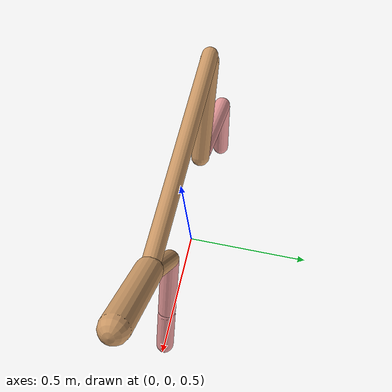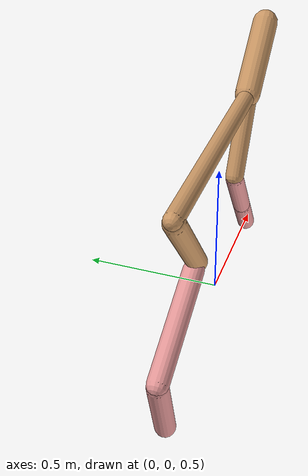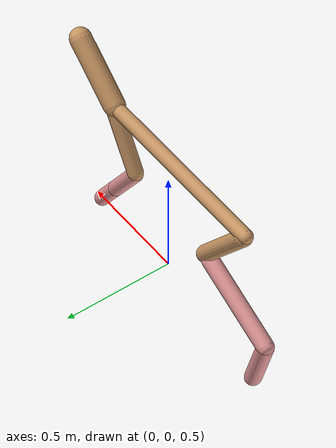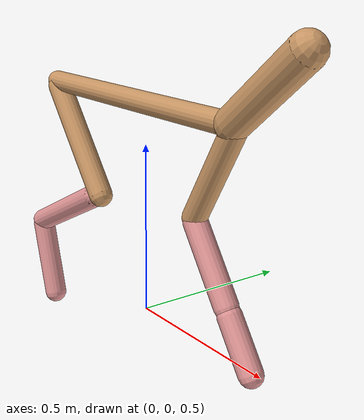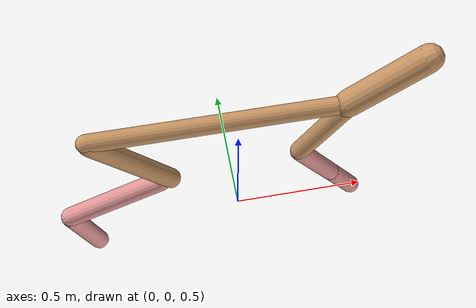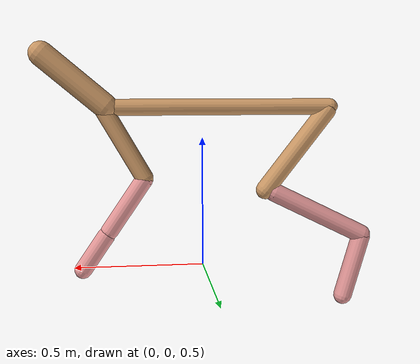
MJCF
<mujoco model="cheetah">
  <compiler angle="radian" coordinate="local" inertiafromgeom="true" settotalmass="14" />
  <default>
    <joint armature=".1" damping=".01" limited="true" solimplimit="0 .8 .03" solreflimit=".02 1" stiffness="8" />
    <geom conaffinity="0" condim="3" contype="1" friction="0.8 .1 .1" rgba="0.8 0.6 .4 1" solimp="0.0 0.8 0.01" solref="0.02 1" />
    <motor ctrllimited="true" ctrlrange="-1 1" />
  </default>
  <size nstack="300000" nuser_geom="1" />
  <option gravity="0 0 -9.81" timestep="0.01" />
  <worldbody>
    <body name="torso" pos="0.0 0.0 1.118560327693668">
      <joint armature="0" axis="1 0 0" damping="0" limited="false" name="ignorex" pos="0 0 0" stiffness="0" type="slide" />
      <joint armature="0" axis="0 0 1" damping="0" limited="false" name="ignorez" pos="0 0 0" stiffness="0" type="slide" />
      <joint armature="0" axis="0 1 0" damping="0" limited="false" name="ignorey" pos="0 0 0" stiffness="0" type="hinge" />
      <geom fromto="-0.5 0.0 0.0 0.3803493742294867 0.0 0.0" name="torso" size="0.031245430697038647" type="capsule" />
      <geom axisangle="0 1 0 .87" name="head" pos="0.48034937422948676 0.0 0.1" size="0.046549409836816436 0.15" type="capsule" />

      <body name="bthigh" pos="-.5 0 0">
        <joint axis="0 1 0" damping="6" name="bthigh" pos="0 0 0" range="-.52 1.05" stiffness="240" type="hinge" />
        <geom axisangle="0 1 0 -3.8" name="bthigh" pos="0.13135941245732408 0.0 -0.17076723619452133" size="0.036693380577868806 0.1964332606064253" type="capsule" />
        <body name="bshin" pos="0.22271882491464817 0.0 -0.33153447238904266">
          <joint axis="0 1 0" damping="4.5" name="bshin" pos="0 0 0" range="-.785 .785" stiffness="180" type="hinge" />
          <geom axisangle="0 1 0 -2.03" name="bshin" pos="-0.18758962773259136 0.0 -0.09379481386629568" rgba="0.9 0.6 0.6 1" size="0.036693380577868806 0.2032068213169917" type="capsule" />
          <body name="bfoot" pos="-0.3751792554651827 0.0 -0.18758962773259136">
            <joint axis="0 1 0" damping="3" name="bfoot" pos="0 0 0" range="-.4 .785" stiffness="120" type="hinge" />
            <geom axisangle="0 1 0 -.27" name="bfoot" pos="0.03985182964464651 0.0 -0.12885424918435706" rgba="0.9 0.6 0.6 1" size="0.036693380577868806 0.12734294135864813" type="capsule" />
            <inertial mass="10" />
          </body>
        </body>
      </body>
      <body name="fthigh" pos="0.3803493742294868 0.0 0.0">
        <joint axis="0 1 0" damping="4.5" name="fthigh" pos="0 0 0" range="-1.5 0.8" stiffness="180" type="hinge" />
        <geom axisangle="0 1 0 .52" name="fthigh" pos="-0.08008282422832226 0.0 -0.1372848415342667" size="0.03414302639885654 0.15301072440677635" type="capsule" />
        <body name="fshin" pos="-0.16016564845664452 0.0 -0.2745696830685334">
          <joint axis="0 1 0" damping="3" name="fshin" pos="0 0 0" range="-1.2 1.1" stiffness="120" type="hinge" />
          <geom axisangle="0 1 0 -.6" name="fshin" pos="0.07433763573134987 0.0 -0.10292903408956135" rgba="0.9 0.6 0.6 1" size="0.03414302639885654 0.12194839689562624" type="capsule" />
          <body name="ffoot" pos="0.14867527146269974 0.0 -0.2058580681791227">
            <joint axis="0 1 0" damping="1.5" name="ffoot" pos="0 0 0" range="-3.1 -0.3" stiffness="60" type="hinge" />
            <geom axisangle="0 1 0 -.6" name="ffoot" pos="0.050695237437182426 0.0 -0.07885925823561712" rgba="0.9 0.6 0.6 1" size="0.03414302639885654 0.08053196021409281" type="capsule" />
            <inertial mass="10" />
          </body>
        </body>
      </body>
    </body>
  </worldbody>
  <actuator>
    <motor gear="120" joint="bthigh" name="bthigh" />
    <motor gear="90" joint="bshin" name="bshin" />
    <motor gear="60" joint="bfoot" name="bfoot" />
    <motor gear="120" joint="fthigh" name="fthigh" />
    <motor gear="60" joint="fshin" name="fshin" />
    <motor gear="30" joint="ffoot" name="ffoot" />
  </actuator>
</mujoco>
